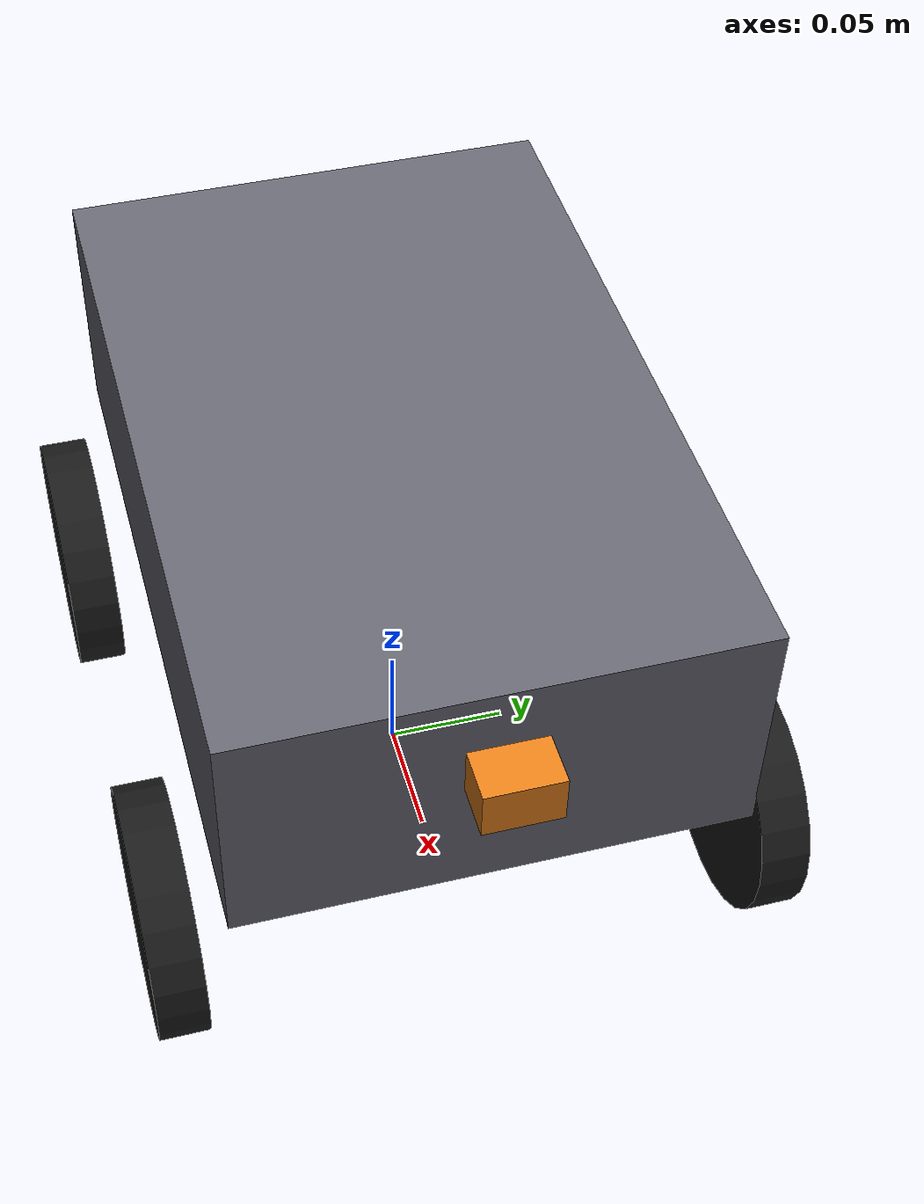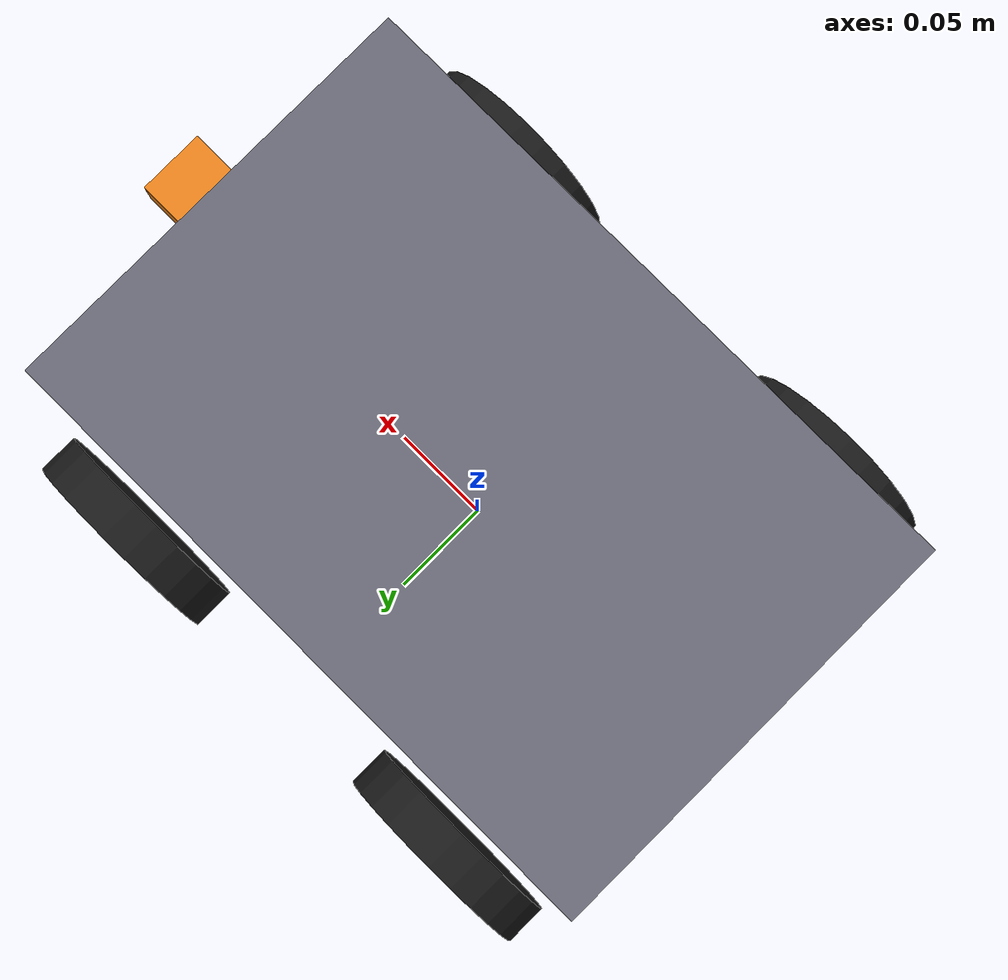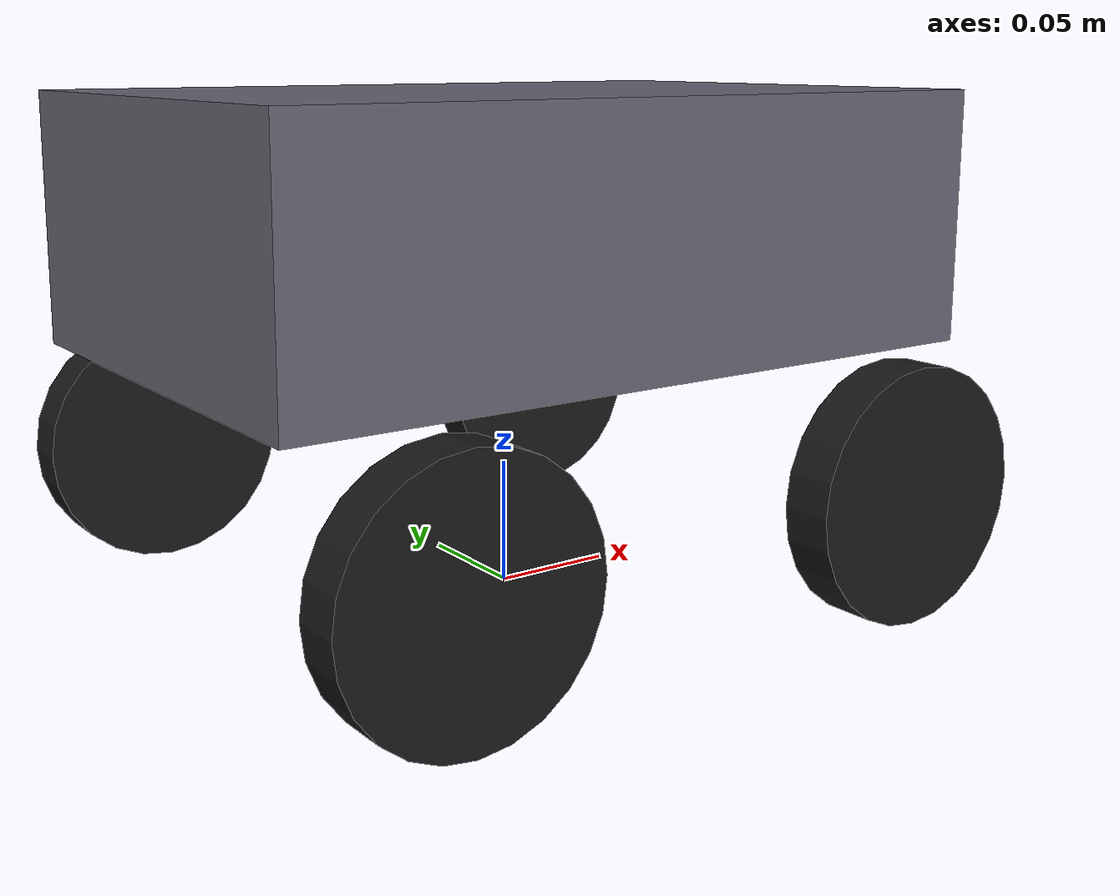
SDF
<?xml version="1.0" ?>
<sdf version="1.8">
  <model name="tiny_bot">
    <pose>0 0 0.15 0 0 0</pose>

    <!-- Chassis. COM lowered to make the robot bottom-heavy. -->
    <link name="base_link">
      <inertial>
        <pose>0 0 -0.04 0 0 0</pose>
        <mass>2.0</mass>
        <inertia>
          <ixx>0.0083</ixx><ixy>0</ixy><ixz>0</ixz>
          <iyy>0.0167</iyy><iyz>0</iyz>
          <izz>0.0217</izz>
        </inertia>
      </inertial>
      <collision name="chassis_collision">
        <geometry>
          <box><size>0.30 0.20 0.10</size></box>
        </geometry>
      </collision>
      <visual name="chassis_visual">
        <geometry>
          <box><size>0.30 0.20 0.10</size></box>
        </geometry>
        <material>
          <ambient>0.4 0.4 0.45 1.0</ambient>
          <diffuse>0.4 0.4 0.45 1.0</diffuse>
        </material>
      </visual>
    </link>

    <!-- Front-left -->
    <link name="fl_wheel">
      <pose>0.10 0.12 -0.10 -1.5708 0 0</pose>
      <inertial>
        <mass>0.1</mass>
        <inertia>
          <ixx>7e-5</ixx><ixy>0</ixy><ixz>0</ixz>
          <iyy>7e-5</iyy><iyz>0</iyz>
          <izz>1.25e-4</izz>
        </inertia>
      </inertial>
      <collision name="c">
        <geometry><cylinder><radius>0.05</radius><length>0.02</length></cylinder></geometry>
        <surface><friction><ode><mu>1.0</mu><mu2>1.0</mu2></ode></friction></surface>
      </collision>
      <visual name="v">
        <geometry><cylinder><radius>0.05</radius><length>0.02</length></cylinder></geometry>
        <material><ambient>0.1 0.1 0.1 1</ambient><diffuse>0.1 0.1 0.1 1</diffuse></material>
      </visual>
    </link>

    <!-- Front-right -->
    <link name="fr_wheel">
      <pose>0.10 -0.12 -0.10 -1.5708 0 0</pose>
      <inertial>
        <mass>0.1</mass>
        <inertia>
          <ixx>7e-5</ixx><ixy>0</ixy><ixz>0</ixz>
          <iyy>7e-5</iyy><iyz>0</iyz>
          <izz>1.25e-4</izz>
        </inertia>
      </inertial>
      <collision name="c">
        <geometry><cylinder><radius>0.05</radius><length>0.02</length></cylinder></geometry>
        <surface><friction><ode><mu>1.0</mu><mu2>1.0</mu2></ode></friction></surface>
      </collision>
      <visual name="v">
        <geometry><cylinder><radius>0.05</radius><length>0.02</length></cylinder></geometry>
        <material><ambient>0.1 0.1 0.1 1</ambient><diffuse>0.1 0.1 0.1 1</diffuse></material>
      </visual>
    </link>

    <!-- Rear-left -->
    <link name="rl_wheel">
      <pose>-0.10 0.12 -0.10 -1.5708 0 0</pose>
      <inertial>
        <mass>0.1</mass>
        <inertia>
          <ixx>7e-5</ixx><ixy>0</ixy><ixz>0</ixz>
          <iyy>7e-5</iyy><iyz>0</iyz>
          <izz>1.25e-4</izz>
        </inertia>
      </inertial>
      <collision name="c">
        <geometry><cylinder><radius>0.05</radius><length>0.02</length></cylinder></geometry>
        <surface><friction><ode><mu>1.0</mu><mu2>1.0</mu2></ode></friction></surface>
      </collision>
      <visual name="v">
        <geometry><cylinder><radius>0.05</radius><length>0.02</length></cylinder></geometry>
        <material><ambient>0.1 0.1 0.1 1</ambient><diffuse>0.1 0.1 0.1 1</diffuse></material>
      </visual>
    </link>

    <!-- Rear-right -->
    <link name="rr_wheel">
      <pose>-0.10 -0.12 -0.10 -1.5708 0 0</pose>
      <inertial>
        <mass>0.1</mass>
        <inertia>
          <ixx>7e-5</ixx><ixy>0</ixy><ixz>0</ixz>
          <iyy>7e-5</iyy><iyz>0</iyz>
          <izz>1.25e-4</izz>
        </inertia>
      </inertial>
      <collision name="c">
        <geometry><cylinder><radius>0.05</radius><length>0.02</length></cylinder></geometry>
        <surface><friction><ode><mu>1.0</mu><mu2>1.0</mu2></ode></friction></surface>
      </collision>
      <visual name="v">
        <geometry><cylinder><radius>0.05</radius><length>0.02</length></cylinder></geometry>
        <material><ambient>0.1 0.1 0.1 1</ambient><diffuse>0.1 0.1 0.1 1</diffuse></material>
      </visual>
    </link>

    <!-- Front IR distance sensor. See tiny_bot.urdf.xacro for matching link. -->
    <link name="ir_front">
      <pose>0.18 0 0.02 0 0 0</pose>
      <inertial>
        <mass>0.01</mass>
        <inertia>
          <ixx>1e-6</ixx><ixy>0</ixy><ixz>0</ixz>
          <iyy>1e-6</iyy><iyz>0</iyz>
          <izz>1e-6</izz>
        </inertia>
      </inertial>
      <visual name="ir_front_visual">
        <!-- visual sits 1.5cm behind the link origin so the +x ray doesn't see it -->
        <pose>-0.015 0 0 0 0 0</pose>
        <geometry>
          <box><size>0.02 0.03 0.02</size></box>
        </geometry>
        <material>
          <ambient>0.9 0.5 0.1 1.0</ambient>
          <diffuse>0.9 0.5 0.1 1.0</diffuse>
        </material>
      </visual>
      <sensor name="ir_front_sensor" type="gpu_lidar">
        <always_on>true</always_on>
        <update_rate>10</update_rate>
        <topic>ir_front</topic>
        <gz_frame_id>ir_front</gz_frame_id>
        <lidar>
          <scan>
            <horizontal>
              <samples>1</samples>
              <resolution>1.0</resolution>
              <min_angle>0.0</min_angle>
              <max_angle>0.0</max_angle>
            </horizontal>
          </scan>
          <range>
            <min>0.05</min>
            <max>1.5</max>
            <resolution>0.01</resolution>
          </range>
          <noise>
            <type>gaussian</type>
            <mean>0.0</mean>
            <stddev>0.005</stddev>
          </noise>
        </lidar>
      </sensor>
    </link>

    <!-- Joints. All wheels are continuous (free rotation). -->
    <joint name="fl_wheel_joint" type="revolute">
      <parent>base_link</parent>
      <child>fl_wheel</child>
      <axis>
        <xyz>0 0 1</xyz>
        <limit><lower>-1e16</lower><upper>1e16</upper><effort>10</effort></limit>
      </axis>
    </joint>

    <joint name="fr_wheel_joint" type="revolute">
      <parent>base_link</parent>
      <child>fr_wheel</child>
      <axis>
        <xyz>0 0 1</xyz>
        <limit><lower>-1e16</lower><upper>1e16</upper><effort>10</effort></limit>
      </axis>
    </joint>

    <joint name="rl_wheel_joint" type="revolute">
      <parent>base_link</parent>
      <child>rl_wheel</child>
      <axis>
        <xyz>0 0 1</xyz>
        <limit><lower>-1e16</lower><upper>1e16</upper><effort>10</effort></limit>
      </axis>
    </joint>

    <joint name="rr_wheel_joint" type="revolute">
      <parent>base_link</parent>
      <child>rr_wheel</child>
      <axis>
        <xyz>0 0 1</xyz>
        <limit><lower>-1e16</lower><upper>1e16</upper><effort>10</effort></limit>
      </axis>
    </joint>

    <joint name="ir_front_joint" type="fixed">
      <parent>base_link</parent>
      <child>ir_front</child>
    </joint>

    <!-- Plugins -->

    <plugin filename="gz-sim-diff-drive-system" name="gz::sim::systems::DiffDrive">
      <left_joint>fl_wheel_joint</left_joint>
      <left_joint>rl_wheel_joint</left_joint>
      <right_joint>fr_wheel_joint</right_joint>
      <right_joint>rr_wheel_joint</right_joint>
      <wheel_separation>0.24</wheel_separation>
      <wheel_radius>0.05</wheel_radius>
      <max_linear_acceleration>2.0</max_linear_acceleration>
      <topic>cmd_vel</topic>
      <odom_topic>odom</odom_topic>
      <frame_id>odom</frame_id>
      <child_frame_id>base_link</child_frame_id>
      <odom_publisher_frequency>30</odom_publisher_frequency>
      <tf_topic>/tf</tf_topic>
    </plugin>

    <plugin filename="gz-sim-joint-state-publisher-system"
            name="gz::sim::systems::JointStatePublisher">
      <topic>joint_states</topic>
      <joint_name>fl_wheel_joint</joint_name>
      <joint_name>fr_wheel_joint</joint_name>
      <joint_name>rl_wheel_joint</joint_name>
      <joint_name>rr_wheel_joint</joint_name>
    </plugin>

  </model>
</sdf>
